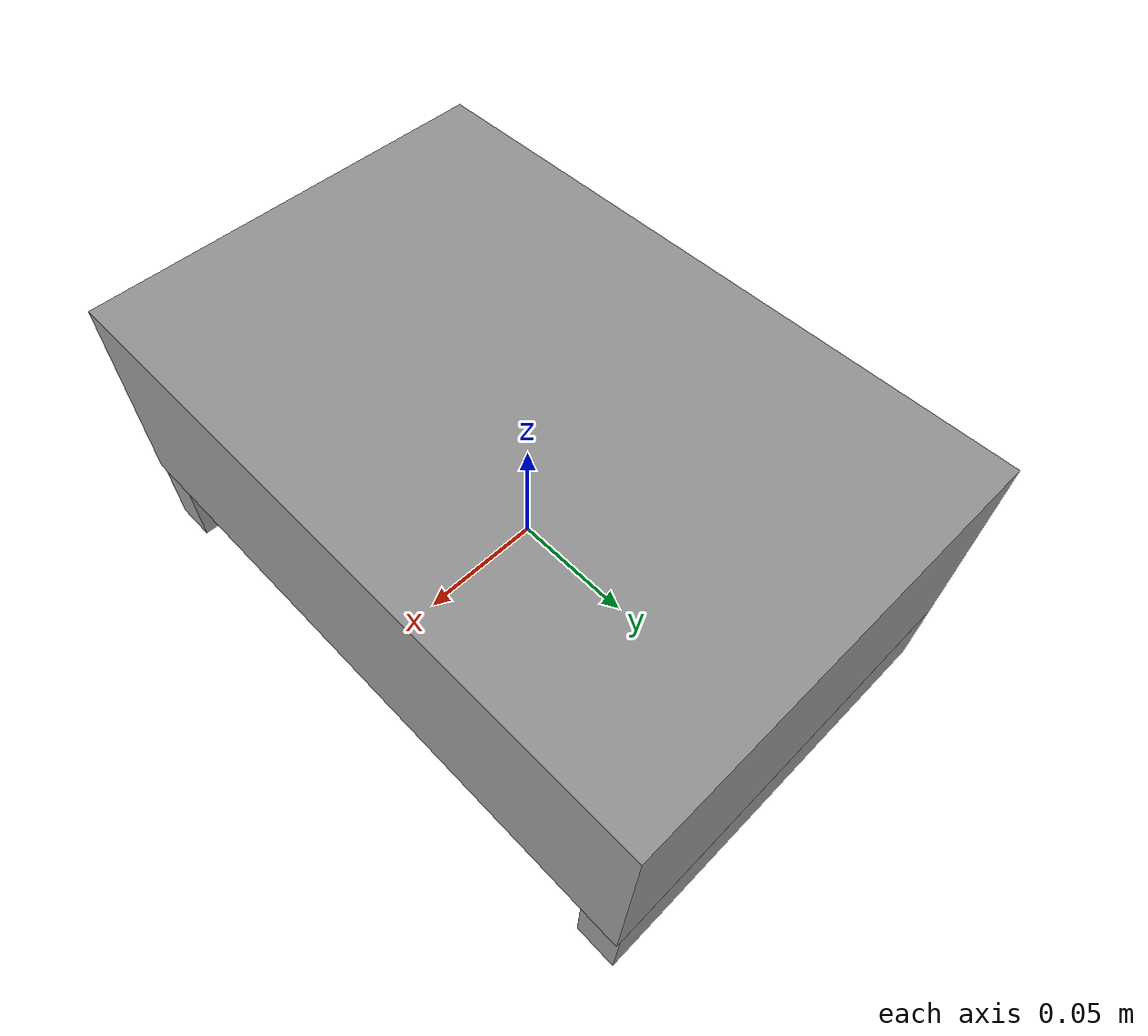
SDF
<?xml version='1.0'?>
<sdf version='1.6'>
  <model name='box_keda_w_kda'>
    <link name='link_0'>
      <inertial>
        <mass>0.3</mass>
        <inertia>
          <ixx>3.656e-05</ixx>
          <ixy>0</ixy>
          <ixz>0</ixz>
          <iyy>0.00078011</iyy>
          <iyz>0</iyz>
          <izz>0.00075842</izz>
        </inertia>
        <pose frame=''>0 0 0 0 -0 0</pose>
      </inertial>
      <pose frame=''>-0.000468 0.123593 -0.020969 0 -0 0</pose>
      <gravity>1</gravity>
      <self_collide>0</self_collide>
      <kinematic>0</kinematic>
      <enable_wind>0</enable_wind>
      <visual name='visual'>
        <pose frame=''>0 0 0 0 -0 0</pose>
        <geometry>
          <box>
            <size>0.173319 0.017247 0.034129</size>
          </box>
        </geometry>
        <material>
          <lighting>1</lighting>
          <script>
            <uri>file://media/materials/scripts/gazebo.material</uri>
            <name>Gazebo/Grey</name>
          </script>
          <shader type='vertex'>
            <normal_map>__default__</normal_map>
          </shader>
          <ambient>0.3 0.3 0.3 1</ambient>
          <diffuse>0.7 0.7 0.7 1</diffuse>
          <specular>0.01 0.01 0.01 1</specular>
          <emissive>0 0 0 1</emissive>
        </material>
        <transparency>0</transparency>
        <cast_shadows>1</cast_shadows>
      </visual>
      <collision name='collision'>
        <laser_retro>0</laser_retro>
        <max_contacts>10</max_contacts>
        <pose frame=''>0 0 0 0 -0 0</pose>
        <geometry>
          <box>
            <size>0.173319 0.017247 0.034129</size>
          </box>
        </geometry>
        <surface>
          <friction>
            <ode>
              <mu>1</mu>
              <mu2>1</mu2>
              <fdir1>0 0 0</fdir1>
              <slip1>0</slip1>
              <slip2>0</slip2>
            </ode>
            <torsional>
              <coefficient>1</coefficient>
              <patch_radius>0</patch_radius>
              <surface_radius>0</surface_radius>
              <use_patch_radius>1</use_patch_radius>
              <ode>
                <slip>0</slip>
              </ode>
            </torsional>
          </friction>
          <bounce>
            <restitution_coefficient>0</restitution_coefficient>
            <threshold>1e+06</threshold>
          </bounce>
          <contact>
            <collide_without_contact>0</collide_without_contact>
            <collide_without_contact_bitmask>1</collide_without_contact_bitmask>
            <collide_bitmask>1</collide_bitmask>
            <ode>
              <soft_cfm>0</soft_cfm>
              <soft_erp>0.2</soft_erp>
              <kp>1e+13</kp>
              <kd>1</kd>
              <max_vel>0.01</max_vel>
              <min_depth>0</min_depth>
            </ode>
            <bullet>
              <split_impulse>1</split_impulse>
              <split_impulse_penetration_threshold>-0.01</split_impulse_penetration_threshold>
              <soft_cfm>0</soft_cfm>
              <soft_erp>0.2</soft_erp>
              <kp>1e+13</kp>
              <kd>1</kd>
            </bullet>
          </contact>
        </surface>
      </collision>
    </link>
    <link name='link_0_clone_0'>
      <inertial>
        <mass>0.3</mass>
        <inertia>
          <ixx>3.656e-05</ixx>
          <ixy>0</ixy>
          <ixz>0</ixz>
          <iyy>0.00078011</iyy>
          <iyz>0</iyz>
          <izz>0.00075842</izz>
        </inertia>
        <pose frame=''>0 0 0 0 -0 0</pose>
      </inertial>
      <pose frame=''>0.000152 -0.12369 -0.020969 0 -0 0</pose>
      <gravity>1</gravity>
      <self_collide>0</self_collide>
      <kinematic>0</kinematic>
      <enable_wind>0</enable_wind>
      <visual name='visual'>
        <pose frame=''>0 0 0 0 -0 0</pose>
        <geometry>
          <box>
            <size>0.173319 0.017247 0.034129</size>
          </box>
        </geometry>
        <material>
          <lighting>1</lighting>
          <script>
            <uri>file://media/materials/scripts/gazebo.material</uri>
            <name>Gazebo/Grey</name>
          </script>
          <shader type='vertex'>
            <normal_map>__default__</normal_map>
          </shader>
          <emissive>0 0 0 1</emissive>
        </material>
        <transparency>0</transparency>
        <cast_shadows>1</cast_shadows>
      </visual>
      <collision name='collision'>
        <laser_retro>0</laser_retro>
        <max_contacts>10</max_contacts>
        <pose frame=''>0 0 0 0 -0 0</pose>
        <geometry>
          <box>
            <size>0.173319 0.017247 0.034129</size>
          </box>
        </geometry>
        <surface>
          <friction>
            <ode>
              <mu>1</mu>
              <mu2>1</mu2>
              <fdir1>0 0 0</fdir1>
              <slip1>0</slip1>
              <slip2>0</slip2>
            </ode>
            <torsional>
              <coefficient>1</coefficient>
              <patch_radius>0</patch_radius>
              <surface_radius>0</surface_radius>
              <use_patch_radius>1</use_patch_radius>
              <ode>
                <slip>0</slip>
              </ode>
            </torsional>
          </friction>
          <bounce>
            <restitution_coefficient>0</restitution_coefficient>
            <threshold>1e+06</threshold>
          </bounce>
          <contact>
            <collide_without_contact>0</collide_without_contact>
            <collide_without_contact_bitmask>1</collide_without_contact_bitmask>
            <collide_bitmask>1</collide_bitmask>
            <ode>
              <soft_cfm>0</soft_cfm>
              <soft_erp>0.2</soft_erp>
              <kp>1e+13</kp>
              <kd>1</kd>
              <max_vel>0.01</max_vel>
              <min_depth>0</min_depth>
            </ode>
            <bullet>
              <split_impulse>1</split_impulse>
              <split_impulse_penetration_threshold>-0.01</split_impulse_penetration_threshold>
              <soft_cfm>0</soft_cfm>
              <soft_erp>0.2</soft_erp>
              <kp>1e+13</kp>
              <kd>1</kd>
            </bullet>
          </contact>
        </surface>
      </collision>
    </link>
    <link name='link_2'>
      <inertial>
        <mass>0.00417042</mass>
        <inertia>
          <ixx>2.71e-05</ixx>
          <ixy>0</ixy>
          <ixz>0</ixz>
          <iyy>1.348e-05</iyy>
          <iyz>0</iyz>
          <izz>3.492e-05</izz>
        </inertia>
        <pose frame=''>0 0 0 0 -0 0</pose>
      </inertial>
      <pose frame=''>0.000317 9.8e-05 0.041939 0 -0 0</pose>
      <gravity>1</gravity>
      <self_collide>0</self_collide>
      <kinematic>0</kinematic>
      <enable_wind>0</enable_wind>
      <visual name='visual'>
        <pose frame=''>0 0 0 0 -0 0</pose>
        <geometry>
          <box>
            <size>0.175052 0.264248 0.090208</size>
          </box>
        </geometry>
        <material>
          <lighting>1</lighting>
          <script>
            <uri>file://media/materials/scripts/gazebo.material</uri>
            <name>Gazebo/Grey</name>
          </script>
          <shader type='vertex'>
            <normal_map>__default__</normal_map>
          </shader>
          <ambient>0.3 0.3 0.3 1</ambient>
          <diffuse>0.7 0.7 0.7 1</diffuse>
          <specular>0.01 0.01 0.01 1</specular>
          <emissive>0 0 0 1</emissive>
        </material>
        <transparency>0</transparency>
        <cast_shadows>1</cast_shadows>
      </visual>
      <collision name='collision'>
        <laser_retro>0</laser_retro>
        <max_contacts>10</max_contacts>
        <pose frame=''>0 0 0 0 -0 0</pose>
        <geometry>
          <box>
            <size>0.175052 0.264248 0.090208</size>
          </box>
        </geometry>
        <surface>
          <friction>
            <ode>
              <mu>100000</mu>
              <mu2>100000</mu2>
              <fdir1>0.707106 0.707106 0</fdir1>
              <slip1>0</slip1>
              <slip2>0</slip2>
            </ode>
            <torsional>
              <coefficient>1</coefficient>
              <patch_radius>0</patch_radius>
              <surface_radius>0</surface_radius>
              <use_patch_radius>1</use_patch_radius>
              <ode>
                <slip>0</slip>
              </ode>
            </torsional>
          </friction>
          <bounce>
            <restitution_coefficient>0</restitution_coefficient>
            <threshold>1e+06</threshold>
          </bounce>
          <contact>
            <collide_without_contact>0</collide_without_contact>
            <collide_without_contact_bitmask>1</collide_without_contact_bitmask>
            <collide_bitmask>1</collide_bitmask>
            <ode>
              <soft_cfm>0</soft_cfm>
              <soft_erp>0.2</soft_erp>
              <kp>1e+13</kp>
              <kd>1</kd>
              <max_vel>0.01</max_vel>
              <min_depth>0</min_depth>
            </ode>
            <bullet>
              <split_impulse>1</split_impulse>
              <split_impulse_penetration_threshold>-0.01</split_impulse_penetration_threshold>
              <soft_cfm>0</soft_cfm>
              <soft_erp>0.2</soft_erp>
              <kp>1e+13</kp>
              <kd>1</kd>
            </bullet>
          </contact>
        </surface>
      </collision>
    </link>
    <joint name='link_2_JOINT_0' type='fixed'>
      <parent>link_2</parent>
      <child>link_0</child>
      <pose frame=''>0 0 0 0 -0 0</pose>
      <physics>
        <ode>
          <limit>
            <cfm>0</cfm>
            <erp>0.2</erp>
          </limit>
          <suspension>
            <cfm>0</cfm>
            <erp>0.2</erp>
          </suspension>
        </ode>
      </physics>
    </joint>
    <joint name='link_2_JOINT_1' type='fixed'>
      <parent>link_2</parent>
      <child>link_0_clone_0</child>
      <pose frame=''>0 0 0 0 -0 0</pose>
      <physics>
        <ode>
          <limit>
            <cfm>0</cfm>
            <erp>0.2</erp>
          </limit>
          <suspension>
            <cfm>0</cfm>
            <erp>0.2</erp>
          </suspension>
        </ode>
      </physics>
    </joint>
    <static>0</static>
    <allow_auto_disable>1</allow_auto_disable>
  </model>
</sdf>
